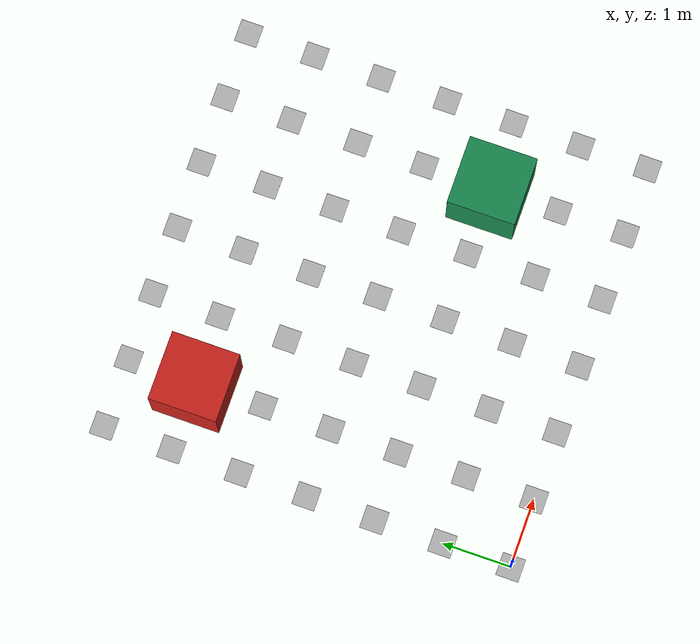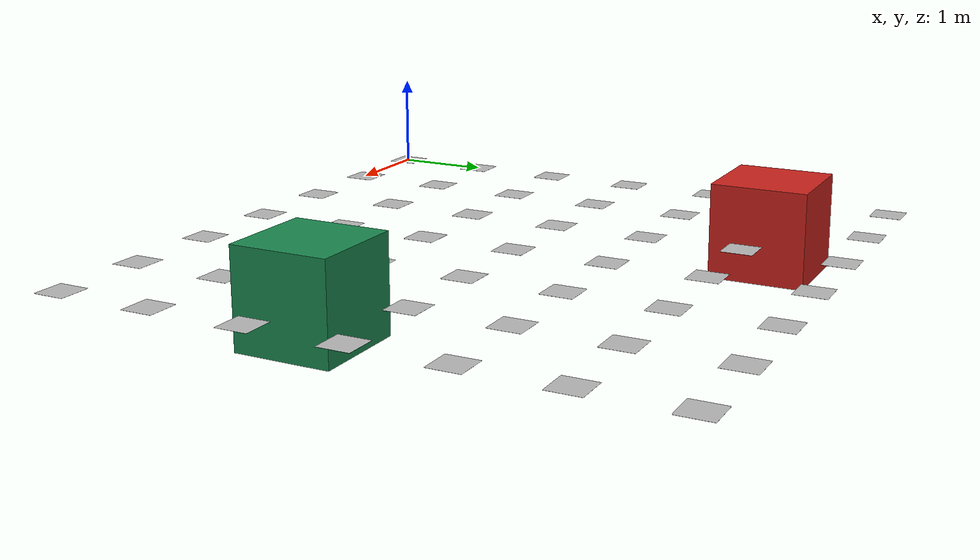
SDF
<sdf version="1.5">
 <world name="default">
  <include><uri>model://aruco_cmit_txt</uri></include>
  <include><uri>model://sun</uri></include>
  <include><uri>model://red</uri><name>red_1</name><pose>1 5 0 0 0 0</pose></include>
  <include><uri>model://green</uri><name>green_3</name><pose>5 2 0 0 0 0</pose></include>
  <scene>
   <ambient>0.8 0.8 0.8 1</ambient>
   <background>0.8 0.9 1 1</background>
   <shadows>false</shadows>
   <grid>false</grid>
   <origin_visual>false</origin_visual>
  </scene>
  <physics default="0" name="default_physics" type="ode">
   <gravity>0 0 -9.8066</gravity>
   <ode>
    <solver>
     <type>quick</type>
     <iters>10</iters>
     <sor>1.3</sor>
     <use_dynamic_moi_rescaling>0</use_dynamic_moi_rescaling>
    </solver>
    <constraints>
     <cfm>0</cfm>
     <erp>0.2</erp>
     <contact_max_correcting_vel>100</contact_max_correcting_vel>
     <contact_surface_layer>0.001</contact_surface_layer>
    </constraints>
   </ode>
   <max_step_size>0.004</max_step_size>
   <real_time_factor>1</real_time_factor>
   <real_time_update_rate>250</real_time_update_rate>
   <magnetic_field>6.0e-6 2.3e-5 -4.2e-5</magnetic_field>
  </physics>
 </world>
</sdf>

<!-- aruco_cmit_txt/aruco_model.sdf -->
<sdf version="1.5">
    <model name="aruco_2_99">
        <static>true</static>
        <link name="aruco_2_99_link">

<visual name="visual_marker_2_0">
    <pose>0.0 6.0 0.0 0.0 0.0 1.57079632679</pose>
    <cast_shadows>false</cast_shadows>
    <geometry>
        <box>
            <size>0.33 0.33 1e-3</size>
        </box>
    </geometry>
    <material>
        <script>
            <uri>model://aruco_cmit_txt/materials/scripts</uri>
            <uri>model://aruco_cmit_txt/materials/textures</uri>
            <name>aruco/marker_2_0</name>
        </script>
    </material>
</visual>

<visual name="visual_marker_2_1">
    <pose>1.0 6.0 0.0 0.0 0.0 1.57079632679</pose>
    <cast_shadows>false</cast_shadows>
    <geometry>
        <box>
            <size>0.33 0.33 1e-3</size>
        </box>
    </geometry>
    <material>
        <script>
            <uri>model://aruco_cmit_txt/materials/scripts</uri>
            <uri>model://aruco_cmit_txt/materials/textures</uri>
            <name>aruco/marker_2_1</name>
        </script>
    </material>
</visual>

<visual name="visual_marker_2_2">
    <pose>2.0 6.0 0.0 0.0 0.0 1.57079632679</pose>
    <cast_shadows>false</cast_shadows>
    <geometry>
        <box>
            <size>0.33 0.33 1e-3</size>
        </box>
    </geometry>
    <material>
        <script>
            <uri>model://aruco_cmit_txt/materials/scripts</uri>
            <uri>model://aruco_cmit_txt/materials/textures</uri>
            <name>aruco/marker_2_2</name>
        </script>
    </material>
</visual>

<visual name="visual_marker_2_3">
    <pose>3.0 6.0 0.0 0.0 0.0 1.57079632679</pose>
    <cast_shadows>false</cast_shadows>
    <geometry>
        <box>
            <size>0.33 0.33 1e-3</size>
        </box>
    </geometry>
    <material>
        <script>
            <uri>model://aruco_cmit_txt/materials/scripts</uri>
            <uri>model://aruco_cmit_txt/materials/textures</uri>
            <name>aruco/marker_2_3</name>
        </script>
    </material>
</visual>

<visual name="visual_marker_2_4">
    <pose>4.0 6.0 0.0 0.0 0.0 1.57079632679</pose>
    <cast_shadows>false</cast_shadows>
    <geometry>
        <box>
            <size>0.33 0.33 1e-3</size>
        </box>
    </geometry>
    <material>
        <script>
            <uri>model://aruco_cmit_txt/materials/scripts</uri>
            <uri>model://aruco_cmit_txt/materials/textures</uri>
            <name>aruco/marker_2_4</name>
        </script>
    </material>
</visual>

<visual name="visual_marker_2_5">
    <pose>5.0 6.0 0.0 0.0 0.0 1.57079632679</pose>
    <cast_shadows>false</cast_shadows>
    <geometry>
        <box>
            <size>0.33 0.33 1e-3</size>
        </box>
    </geometry>
    <material>
        <script>
            <uri>model://aruco_cmit_txt/materials/scripts</uri>
            <uri>model://aruco_cmit_txt/materials/textures</uri>
            <name>aruco/marker_2_5</name>
        </script>
    </material>
</visual>

<visual name="visual_marker_2_6">
    <pose>6.0 6.0 0.0 0.0 0.0 1.57079632679</pose>
    <cast_shadows>false</cast_shadows>
    <geometry>
        <box>
            <size>0.33 0.33 1e-3</size>
        </box>
    </geometry>
    <material>
        <script>
            <uri>model://aruco_cmit_txt/materials/scripts</uri>
            <uri>model://aruco_cmit_txt/materials/textures</uri>
            <name>aruco/marker_2_6</name>
        </script>
    </material>
</visual>

<visual name="visual_marker_2_7">
    <pose>0.0 5.0 0.0 0.0 0.0 1.57079632679</pose>
    <cast_shadows>false</cast_shadows>
    <geometry>
        <box>
            <size>0.33 0.33 1e-3</size>
        </box>
    </geometry>
    <material>
        <script>
            <uri>model://aruco_cmit_txt/materials/scripts</uri>
            <uri>model://aruco_cmit_txt/materials/textures</uri>
            <name>aruco/marker_2_7</name>
        </script>
    </material>
</visual>

<visual name="visual_marker_2_8">
    <pose>1.0 5.0 0.0 0.0 0.0 1.57079632679</pose>
    <cast_shadows>false</cast_shadows>
    <geometry>
        <box>
            <size>0.33 0.33 1e-3</size>
        </box>
    </geometry>
    <material>
        <script>
            <uri>model://aruco_cmit_txt/materials/scripts</uri>
            <uri>model://aruco_cmit_txt/materials/textures</uri>
            <name>aruco/marker_2_8</name>
        </script>
    </material>
</visual>

<visual name="visual_marker_2_9">
    <pose>2.0 5.0 0.0 0.0 0.0 1.57079632679</pose>
    <cast_shadows>false</cast_shadows>
    <geometry>
        <box>
            <size>0.33 0.33 1e-3</size>
        </box>
    </geometry>
    <material>
        <script>
            <uri>model://aruco_cmit_txt/materials/scripts</uri>
            <uri>model://aruco_cmit_txt/materials/textures</uri>
            <name>aruco/marker_2_9</name>
        </script>
    </material>
</visual>

<visual name="visual_marker_2_10">
    <pose>3.0 5.0 0.0 0.0 0.0 1.57079632679</pose>
    <cast_shadows>false</cast_shadows>
    <geometry>
        <box>
            <size>0.33 0.33 1e-3</size>
        </box>
    </geometry>
    <material>
        <script>
            <uri>model://aruco_cmit_txt/materials/scripts</uri>
            <uri>model://aruco_cmit_txt/materials/textures</uri>
            <name>aruco/marker_2_10</name>
        </script>
    </material>
</visual>

<visual name="visual_marker_2_11">
    <pose>4.0 5.0 0.0 0.0 0.0 1.57079632679</pose>
    <cast_shadows>false</cast_shadows>
    <geometry>
        <box>
           <size>0.33 0.33 1e-3</size>
        </box>
    </geometry>
    <material>
        <script>
            <uri>model://aruco_cmit_txt/materials/scripts</uri>
            <uri>model://aruco_cmit_txt/materials/textures</uri>
            <name>aruco/marker_2_11</name>
        </script>
    </material>
</visual>

<visual name="visual_marker_2_12">
    <pose>5.0 5.0 0.0 0.0 0.0 1.57079632679</pose>
    <cast_shadows>false</cast_shadows>
    <geometry>
        <box>
            <size>0.33 0.33 1e-3</size>
        </box>
    </geometry>
    <material>
        <script>
            <uri>model://aruco_cmit_txt/materials/scripts</uri>
            <uri>model://aruco_cmit_txt/materials/textures</uri>
            <name>aruco/marker_2_12</name>
        </script>
    </material>
</visual>

<visual name="visual_marker_2_13">
    <pose>6.0 5.0 0.0 0.0 0.0 1.57079632679</pose>
    <cast_shadows>false</cast_shadows>
    <geometry>
        <box>
            <size>0.33 0.33 1e-3</size>
        </box>
    </geometry>
    <material>
        <script>
            <uri>model://aruco_cmit_txt/materials/scripts</uri>
            <uri>model://aruco_cmit_txt/materials/textures</uri>
            <name>aruco/marker_2_13</name>
        </script>
    </material>
</visual>

<visual name="visual_marker_2_14">
    <pose>0.0 4.0 0.0 0.0 0.0 1.57079632679</pose>
    <cast_shadows>false</cast_shadows>
    <geometry>
        <box>
            <size>0.33 0.33 1e-3</size>
        </box>
    </geometry>
    <material>
        <script>
            <uri>model://aruco_cmit_txt/materials/scripts</uri>
            <uri>model://aruco_cmit_txt/materials/textures</uri>
            <name>aruco/marker_2_14</name>
        </script>
    </material>
</visual>

<visual name="visual_marker_2_15">
    <pose>1.0 4.0 0.0 0.0 0.0 1.57079632679</pose>
    <cast_shadows>false</cast_shadows>
    <geometry>
        <box>
            <size>0.33 0.33 1e-3</size>
        </box>
    </geometry>
    <material>
        <script>
            <uri>model://aruco_cmit_txt/materials/scripts</uri>
            <uri>model://aruco_cmit_txt/materials/textures</uri>
            <name>aruco/marker_2_15</name>
        </script>
    </material>
</visual>

<visual name="visual_marker_2_16">
    <pose>2.0 4.0 0.0 0.0 0.0 1.57079632679</pose>
    <cast_shadows>false</cast_shadows>
    <geometry>
        <box>
            <size>0.33 0.33 1e-3</size>
        </box>
    </geometry>
    <material>
        <script>
            <uri>model://aruco_cmit_txt/materials/scripts</uri>
            <uri>model://aruco_cmit_txt/materials/textures</uri>
            <name>aruco/marker_2_16</name>
        </script>
    </material>
</visual>

<visual name="visual_marker_2_17">
    <pose>3.0 4.0 0.0 0.0 0.0 1.57079632679</pose>
    <cast_shadows>false</cast_shadows>
    <geometry>
        <box>
            <size>0.33 0.33 1e-3</size>
        </box>
    </geometry>
    <material>
        <script>
            <uri>model://aruco_cmit_txt/materials/scripts</uri>
            <uri>model://aruco_cmit_txt/materials/textures</uri>
            <name>aruco/marker_2_17</name>
        </script>
    </material>
</visual>

<visual name="visual_marker_2_18">
    <pose>4.0 4.0 0.0 0.0 0.0 1.57079632679</pose>
    <cast_shadows>false</cast_shadows>
    <geometry>
        <box>
            <size>0.33 0.33 1e-3</size>
        </box>
    </geometry>
    <material>
        <script>
            <uri>model://aruco_cmit_txt/materials/scripts</uri>
            <uri>model://aruco_cmit_txt/materials/textures</uri>
            <name>aruco/marker_2_18</name>
        </script>
    </material>
</visual>

<visual name="visual_marker_2_19">
    <pose>5.0 4.0 0.0 0.0 0.0 1.57079632679</pose>
    <cast_shadows>false</cast_shadows>
    <geometry>
        <box>
            <size>0.33 0.33 1e-3</size>
        </box>
    </geometry>
    <material>
        <script>
            <uri>model://aruco_cmit_txt/materials/scripts</uri>
            <uri>model://aruco_cmit_txt/materials/textures</uri>
            <name>aruco/marker_2_19</name>
        </script>
    </material>
</visual>

<visual name="visual_marker_2_20">
    <pose>6.0 4.0 0.0 0.0 0.0 1.57079632679</pose>
    <cast_shadows>false</cast_shadows>
    <geometry>
        <box>
            <size>0.33 0.33 1e-3</size>
        </box>
    </geometry>
    <material>
        <script>
            <uri>model://aruco_cmit_txt/materials/scripts</uri>
            <uri>model://aruco_cmit_txt/materials/textures</uri>
            <name>aruco/marker_2_20</name>
        </script>
    </material>
</visual>

<visual name="visual_marker_2_21">
    <pose>0.0 3.0 0.0 0.0 0.0 1.57079632679</pose>
    <cast_shadows>false</cast_shadows>
    <geometry>
        <box>
            <size>0.33 0.33 1e-3</size>
        </box>
    </geometry>
    <material>
        <script>
            <uri>model://aruco_cmit_txt/materials/scripts</uri>
            <uri>model://aruco_cmit_txt/materials/textures</uri>
            <name>aruco/marker_2_21</name>
        </script>
    </material>
</visual>

<visual name="visual_marker_2_22">
    <pose>1.0 3.0 0.0 0.0 0.0 1.57079632679</pose>
    <cast_shadows>false</cast_shadows>
    <geometry>
        <box>
            <size>0.33 0.33 1e-3</size>
        </box>
    </geometry>
    <material>
        <script>
            <uri>model://aruco_cmit_txt/materials/scripts</uri>
            <uri>model://aruco_cmit_txt/materials/textures</uri>
            <name>aruco/marker_2_22</name>
        </script>
    </material>
</visual>

<visual name="visual_marker_2_23">
    <pose>2.0 3.0 0.0 0.0 0.0 1.57079632679</pose>
    <cast_shadows>false</cast_shadows>
    <geometry>
        <box>
            <size>0.33 0.33 1e-3</size>
        </box>
    </geometry>
    <material>
        <script>
            <uri>model://aruco_cmit_txt/materials/scripts</uri>
            <uri>model://aruco_cmit_txt/materials/textures</uri>
            <name>aruco/marker_2_23</name>
        </script>
    </material>
</visual>

<visual name="visual_marker_2_24">
    <pose>3.0 3.0 0.0 0.0 0.0 1.57079632679</pose>
    <cast_shadows>false</cast_shadows>
    <geometry>
        <box>
            <size>0.33 0.33 1e-3</size>
        </box>
    </geometry>
    <material>
        <script>
            <uri>model://aruco_cmit_txt/materials/scripts</uri>
            <uri>model://aruco_cmit_txt/materials/textures</uri>
            <name>aruco/marker_2_24</name>
        </script>
    </material>
</visual>

<visual name="visual_marker_2_25">
    <pose>4.0 3.0 0.0 0.0 0.0 1.57079632679</pose>
    <cast_shadows>false</cast_shadows>
    <geometry>
        <box>
            <size>0.33 0.33 1e-3</size>
        </box>
    </geometry>
    <material>
        <script>
            <uri>model://aruco_cmit_txt/materials/scripts</uri>
            <uri>model://aruco_cmit_txt/materials/textures</uri>
            <name>aruco/marker_2_25</name>
        </script>
    </material>
</visual>

<visual name="visual_marker_2_26">
    <pose>5.0 3.0 0.0 0.0 0.0 1.57079632679</pose>
    <cast_shadows>false</cast_shadows>
    <geometry>
        <box>
            <size>0.33 0.33 1e-3</size>
        </box>
    </geometry>
    <material>
        <script>
            <uri>model://aruco_cmit_txt/materials/scripts</uri>
            <uri>model://aruco_cmit_txt/materials/textures</uri>
            <name>aruco/marker_2_26</name>
        </script>
    </material>
</visual>

<visual name="visual_marker_2_27">
    <pose>6.0 3.0 0.0 0.0 0.0 1.57079632679</pose>
    <cast_shadows>false</cast_shadows>
    <geometry>
        <box>
            <size>0.33 0.33 1e-3</size>
        </box>
    </geometry>
    <material>
        <script>
            <uri>model://aruco_cmit_txt/materials/scripts</uri>
            <uri>model://aruco_cmit_txt/materials/textures</uri>
            <name>aruco/marker_2_27</name>
        </script>
    </material>
</visual>

<visual name="visual_marker_2_28">
    <pose>0.0 2.0 0.0 0.0 0.0 1.57079632679</pose>
    <cast_shadows>false</cast_shadows>
    <geometry>
        <box>
            <size>0.33 0.33 1e-3</size>
        </box>
    </geometry>
    <material>
        <script>
            <uri>model://aruco_cmit_txt/materials/scripts</uri>
            <uri>model://aruco_cmit_txt/materials/textures</uri>
            <name>aruco/marker_2_28</name>
        </script>
    </material>
</visual>

<visual name="visual_marker_2_29">
    <pose>1.0 2.0 0.0 0.0 0.0 1.57079632679</pose>
    <cast_shadows>false</cast_shadows>
    <geometry>
        <box>
            <size>0.33 0.33 1e-3</size>
        </box>
    </geometry>
    <material>
        <script>
            <uri>model://aruco_cmit_txt/materials/scripts</uri>
            <uri>model://aruco_cmit_txt/materials/textures</uri>
            <name>aruco/marker_2_29</name>
        </script>
    </material>
</visual>

<visual name="visual_marker_2_30">
    <pose>2.0 2.0 0.0 0.0 0.0 1.57079632679</pose>
    <cast_shadows>false</cast_shadows>
    <geometry>
        <box>
            <size>0.33 0.33 1e-3</size>
        </box>
    </geometry>
    <material>
        <script>
            <uri>model://aruco_cmit_txt/materials/scripts</uri>
            <uri>model://aruco_cmit_txt/materials/textures</uri>
            <name>aruco/marker_2_30</name>
        </script>
    </material>
</visual>

<visual name="visual_marker_2_31">
    <pose>3.0 2.0 0.0 0.0 0.0 1.57079632679</pose>
    <cast_shadows>false</cast_shadows>
    <geometry>
        <box>
            <size>0.33 0.33 1e-3</size>
        </box>
    </geometry>
    <material>
        <script>
            <uri>model://aruco_cmit_txt/materials/scripts</uri>
            <uri>model://aruco_cmit_txt/materials/textures</uri>
            <name>aruco/marker_2_31</name>
        </script>
    </material>
</visual>

<visual name="visual_marker_2_32">
    <pose>4.0 2.0 0.0 0.0 0.0 1.57079632679</pose>
    <cast_shadows>false</cast_shadows>
    <geometry>
        <box>
            <size>0.33 0.33 1e-3</size>
        </box>
    </geometry>
    <material>
        <script>
            <uri>model://aruco_cmit_txt/materials/scripts</uri>
            <uri>model://aruco_cmit_txt/materials/textures</uri>
            <name>aruco/marker_2_32</name>
        </script>
    </material>
</visual>

<visual name="visual_marker_2_33">
    <pose>5.0 2.0 0.0 0.0 0.0 1.57079632679</pose>
    <cast_shadows>false</cast_shadows>
    <geometry>
        <box>
            <size>0.33 0.33 1e-3</size>
        </box>
    </geometry>
    <material>
        <script>
            <uri>model://aruco_cmit_txt/materials/scripts</uri>
            <uri>model://aruco_cmit_txt/materials/textures</uri>
            <name>aruco/marker_2_33</name>
        </script>
    </material>
</visual>

<visual name="visual_marker_2_34">
    <pose>6.0 2.0 0.0 0.0 0.0 1.57079632679</pose>
    <cast_shadows>false</cast_shadows>
    <geometry>
        <box>
            <size>0.33 0.33 1e-3</size>
        </box>
    </geometry>
    <material>
        <script>
            <uri>model://aruco_cmit_txt/materials/scripts</uri>
            <uri>model://aruco_cmit_txt/materials/textures</uri>
            <name>aruco/marker_2_34</name>
        </script>
    </material>
</visual>

<visual name="visual_marker_2_35">
    <pose>0.0 1.0 0.0 0.0 0.0 1.57079632679</pose>
    <cast_shadows>false</cast_shadows>
    <geometry>
        <box>
            <size>0.33 0.33 1e-3</size>
        </box>
    </geometry>
    <material>
        <script>
            <uri>model://aruco_cmit_txt/materials/scripts</uri>
            <uri>model://aruco_cmit_txt/materials/textures</uri>
            <name>aruco/marker_2_35</name>
        </script>
    </material>
</visual>

<visual name="visual_marker_2_36">
    <pose>1.0 1.0 0.0 0.0 0.0 1.57079632679</pose>
    <cast_shadows>false</cast_shadows>
    <geometry>
        <box>
            <size>0.33 0.33 1e-3</size>
        </box>
    </geometry>
    <material>
        <script>
            <uri>model://aruco_cmit_txt/materials/scripts</uri>
            <uri>model://aruco_cmit_txt/materials/textures</uri>
            <name>aruco/marker_2_36</name>
        </script>
    </material>
</visual>

<visual name="visual_marker_2_37">
    <pose>2.0 1.0 0.0 0.0 0.0 1.57079632679</pose>
    <cast_shadows>false</cast_shadows>
    <geometry>
        <box>
            <size>0.33 0.33 1e-3</size>
        </box>
    </geometry>
    <material>
        <script>
            <uri>model://aruco_cmit_txt/materials/scripts</uri>
            <uri>model://aruco_cmit_txt/materials/textures</uri>
            <name>aruco/marker_2_37</name>
        </script>
    </material>
</visual>

<visual name="visual_marker_2_38">
    <pose>3.0 1.0 0.0 0.0 0.0 1.57079632679</pose>
    <cast_shadows>false</cast_shadows>
    <geometry>
        <box>
            <size>0.33 0.33 1e-3</size>
        </box>
    </geometry>
    <material>
        <script>
            <uri>model://aruco_cmit_txt/materials/scripts</uri>
            <uri>model://aruco_cmit_txt/materials/textures</uri>
            <name>aruco/marker_2_38</name>
        </script>
    </material>
</visual>

<visual name="visual_marker_2_39">
    <pose>4.0 1.0 0.0 0.0 0.0 1.57079632679</pose>
    <cast_shadows>false</cast_shadows>
    <geometry>
        <box>
            <size>0.33 0.33 1e-3</size>
        </box>
    </geometry>
    <material>
        <script>
            <uri>model://aruco_cmit_txt/materials/scripts</uri>
            <uri>model://aruco_cmit_txt/materials/textures</uri>
            <name>aruco/marker_2_39</name>
        </script>
    </material>
</visual>

<visual name="visual_marker_2_40">
    <pose>5.0 1.0 0.0 0.0 0.0 1.57079632679</pose>
    <cast_shadows>false</cast_shadows>
    <geometry>
        <box>
            <size>0.33 0.33 1e-3</size>
        </box>
    </geometry>
    <material>
        <script>
            <uri>model://aruco_cmit_txt/materials/scripts</uri>
            <uri>model://aruco_cmit_txt/materials/textures</uri>
            <name>aruco/marker_2_40</name>
        </script>
    </material>
</visual>

<visual name="visual_marker_2_41">
    <pose>6.0 1.0 0.0 0.0 0.0 1.57079632679</pose>
    <cast_shadows>false</cast_shadows>
    <geometry>
        <box>
            <size>0.33 0.33 1e-3</size>
        </box>
    </geometry>
    <material>
        <script>
            <uri>model://aruco_cmit_txt/materials/scripts</uri>
            <uri>model://aruco_cmit_txt/materials/textures</uri>
            <name>aruco/marker_2_41</name>
        </script>
    </material>
</visual>

<visual name="visual_marker_2_42">
    <pose>0.0 0.0 0.0 0.0 0.0 1.57079632679</pose>
    <cast_shadows>false</cast_shadows>
    <geometry>
        <box>
            <size>0.33 0.33 1e-3</size>
        </box>
    </geometry>
    <material>
        <script>
            <uri>model://aruco_cmit_txt/materials/scripts</uri>
            <uri>model://aruco_cmit_txt/materials/textures</uri>
            <name>aruco/marker_2_42</name>
        </script>
    </material>
</visual>

<visual name="visual_marker_2_43">
    <pose>1.0 0.0 0.0 0.0 0.0 1.57079632679</pose>
    <cast_shadows>false</cast_shadows>
    <geometry>
        <box>
            <size>0.33 0.33 1e-3</size>
        </box>
    </geometry>
    <material>
        <script>
            <uri>model://aruco_cmit_txt/materials/scripts</uri>
            <uri>model://aruco_cmit_txt/materials/textures</uri>
            <name>aruco/marker_2_43</name>
        </script>
    </material>
</visual>

<visual name="visual_marker_2_44">
    <pose>2.0 0.0 0.0 0.0 0.0 1.57079632679</pose>
    <cast_shadows>false</cast_shadows>
    <geometry>
        <box>
            <size>0.33 0.33 1e-3</size>
        </box>
    </geometry>
    <material>
        <script>
            <uri>model://aruco_cmit_txt/materials/scripts</uri>
            <uri>model://aruco_cmit_txt/materials/textures</uri>
            <name>aruco/marker_2_44</name>
        </script>
    </material>
</visual>

<visual name="visual_marker_2_45">
    <pose>3.0 0.0 0.0 0.0 0.0 1.57079632679</pose>
    <cast_shadows>false</cast_shadows>
    <geometry>
        <box>
            <size>0.33 0.33 1e-3</size>
        </box>
    </geometry>
    <material>
        <script>
            <uri>model://aruco_cmit_txt/materials/scripts</uri>
            <uri>model://aruco_cmit_txt/materials/textures</uri>
            <name>aruco/marker_2_45</name>
        </script>
    </material>
</visual>

<visual name="visual_marker_2_46">
    <pose>4.0 0.0 0.0 0.0 0.0 1.57079632679</pose>
    <cast_shadows>false</cast_shadows>
    <geometry>
        <box>
            <size>0.33 0.33 1e-3</size>
        </box>
    </geometry>
    <material>
        <script>
            <uri>model://aruco_cmit_txt/materials/scripts</uri>
            <uri>model://aruco_cmit_txt/materials/textures</uri>
            <name>aruco/marker_2_46</name>
        </script>
    </material>
</visual>

<visual name="visual_marker_2_47">
    <pose>5.0 0.0 0.0 0.0 0.0 1.57079632679</pose>
    <cast_shadows>false</cast_shadows>
    <geometry>
        <box>
            <size>0.33 0.33 1e-3</size>
        </box>
    </geometry>
    <material>
        <script>
            <uri>model://aruco_cmit_txt/materials/scripts</uri>
            <uri>model://aruco_cmit_txt/materials/textures</uri>
            <name>aruco/marker_2_47</name>
        </script>
    </material>
</visual>

<visual name="visual_marker_2_48">
    <pose>6.0 0.0 0.0 0.0 0.0 1.57079632679</pose>
    <cast_shadows>false</cast_shadows>
    <geometry>
        <box>
            <size>0.33 0.33 1e-3</size>
        </box>
    </geometry>
    <material>
        <script>
            <uri>model://aruco_cmit_txt/materials/scripts</uri>
            <uri>model://aruco_cmit_txt/materials/textures</uri>
            <name>aruco/marker_2_48</name>
        </script>
    </material>
</visual>

        </link>
    </model>
</sdf>

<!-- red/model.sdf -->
<sdf version='1.6'>
  <model name='red'>
    <link name='link_0'>
      <inertial>
        <mass>1</mass>
        <inertia>
          <ixx>0.166667</ixx>
          <ixy>0</ixy>
          <ixz>0</ixz>
          <iyy>0.166667</iyy>
          <iyz>0</iyz>
          <izz>0.166667</izz>
        </inertia>
        <pose frame=''>0 0 0 0 -0 0</pose>
      </inertial>
      <pose frame=''>0 0 0 0 -0 0</pose>
      <gravity>1</gravity>
      <self_collide>0</self_collide>
      <kinematic>0</kinematic>
      <enable_wind>0</enable_wind>
      <visual name='visual'>
        <pose frame=''>0 0 0 0 -0 0</pose>
        <geometry>
          <box>
            <size>1 1 1</size>
          </box>
        </geometry>
        <material>
          <lighting>1</lighting>
          <script>
            <uri>file://media/materials/scripts/gazebo.material</uri>
            <name>Gazebo/Grey</name>
          </script>
          <shader type='pixel'>
            <normal_map>__default__</normal_map>
          </shader>
          <ambient>0.747 0.1 0 1</ambient>
          <diffuse>0.799 0.135 0.11 1</diffuse>
          <specular>0.41 0 0.01 1</specular>
          <emissive>0 0 0 1</emissive>
        </material>
        <transparency>0</transparency>
        <cast_shadows>1</cast_shadows>
      </visual>
      <collision name='collision'>
        <laser_retro>0</laser_retro>
        <max_contacts>10</max_contacts>
        <pose frame=''>0 0 0 0 -0 0</pose>
        <geometry>
          <box>
            <size>1 1 1</size>
          </box>
        </geometry>
        <surface>
          <friction>
            <ode>
              <mu>1</mu>
              <mu2>1</mu2>
              <fdir1>0 0 0</fdir1>
              <slip1>0</slip1>
              <slip2>0</slip2>
            </ode>
            <torsional>
              <coefficient>1</coefficient>
              <patch_radius>0</patch_radius>
              <surface_radius>0</surface_radius>
              <use_patch_radius>1</use_patch_radius>
              <ode>
                <slip>0</slip>
              </ode>
            </torsional>
          </friction>
          <bounce>
            <restitution_coefficient>0</restitution_coefficient>
            <threshold>1e+06</threshold>
          </bounce>
          <contact>
            <collide_without_contact>0</collide_without_contact>
            <collide_without_contact_bitmask>1</collide_without_contact_bitmask>
            <collide_bitmask>1</collide_bitmask>
            <ode>
              <soft_cfm>0</soft_cfm>
              <soft_erp>0.2</soft_erp>
              <kp>1e+13</kp>
              <kd>1</kd>
              <max_vel>0.01</max_vel>
              <min_depth>0</min_depth>
            </ode>
            <bullet>
              <split_impulse>1</split_impulse>
              <split_impulse_penetration_threshold>-0.01</split_impulse_penetration_threshold>
              <soft_cfm>0</soft_cfm>
              <soft_erp>0.2</soft_erp>
              <kp>1e+13</kp>
              <kd>1</kd>
            </bullet>
          </contact>
        </surface>
      </collision>
    </link>
    <static>1</static>
    <allow_auto_disable>1</allow_auto_disable>
  </model>
</sdf>

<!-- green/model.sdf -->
<sdf version='1.6'>
  <model name='green'>
    <link name='link_0'>
      <inertial>
        <mass>1</mass>
        <inertia>
          <ixx>0.166667</ixx>
          <ixy>0</ixy>
          <ixz>0</ixz>
          <iyy>0.166667</iyy>
          <iyz>0</iyz>
          <izz>0.166667</izz>
        </inertia>
        <pose frame=''>0 0 0 0 -0 0</pose>
      </inertial>
      <pose frame=''>0 0 0 0 -0 0</pose>
      <gravity>1</gravity>
      <self_collide>0</self_collide>
      <kinematic>0</kinematic>
      <enable_wind>0</enable_wind>
      <visual name='visual'>
        <pose frame=''>0 0 0 0 -0 0</pose>
        <geometry>
          <box>
            <size>1 1 1</size>
          </box>
        </geometry>
        <material>
          <lighting>1</lighting>
          <script>
            <uri>file://media/materials/scripts/gazebo.material</uri>
            <name>Gazebo/Grey</name>
          </script>
          <shader type='pixel'>
            <normal_map>__default__</normal_map>
          </shader>
          <ambient>0.047 0.7 0.26 1</ambient>
          <diffuse>0.1 0.535 0.31 1</diffuse>
          <specular>0.11 0.2 0.01 1</specular>
          <emissive>0 0 0 1</emissive>
        </material>
        <transparency>0</transparency>
        <cast_shadows>1</cast_shadows>
      </visual>
      <collision name='collision'>
        <laser_retro>0</laser_retro>
        <max_contacts>10</max_contacts>
        <pose frame=''>0 0 0 0 -0 0</pose>
        <geometry>
          <box>
            <size>1 1 1</size>
          </box>
        </geometry>
        <surface>
          <friction>
            <ode>
              <mu>1</mu>
              <mu2>1</mu2>
              <fdir1>0 0 0</fdir1>
              <slip1>0</slip1>
              <slip2>0</slip2>
            </ode>
            <torsional>
              <coefficient>1</coefficient>
              <patch_radius>0</patch_radius>
              <surface_radius>0</surface_radius>
              <use_patch_radius>1</use_patch_radius>
              <ode>
                <slip>0</slip>
              </ode>
            </torsional>
          </friction>
          <bounce>
            <restitution_coefficient>0</restitution_coefficient>
            <threshold>1e+06</threshold>
          </bounce>
          <contact>
            <collide_without_contact>0</collide_without_contact>
            <collide_without_contact_bitmask>1</collide_without_contact_bitmask>
            <collide_bitmask>1</collide_bitmask>
            <ode>
              <soft_cfm>0</soft_cfm>
              <soft_erp>0.2</soft_erp>
              <kp>1e+13</kp>
              <kd>1</kd>
              <max_vel>0.01</max_vel>
              <min_depth>0</min_depth>
            </ode>
            <bullet>
              <split_impulse>1</split_impulse>
              <split_impulse_penetration_threshold>-0.01</split_impulse_penetration_threshold>
              <soft_cfm>0</soft_cfm>
              <soft_erp>0.2</soft_erp>
              <kp>1e+13</kp>
              <kd>1</kd>
            </bullet>
          </contact>
        </surface>
      </collision>
    </link>
    <static>1</static>
    <allow_auto_disable>1</allow_auto_disable>
  </model>
</sdf>
